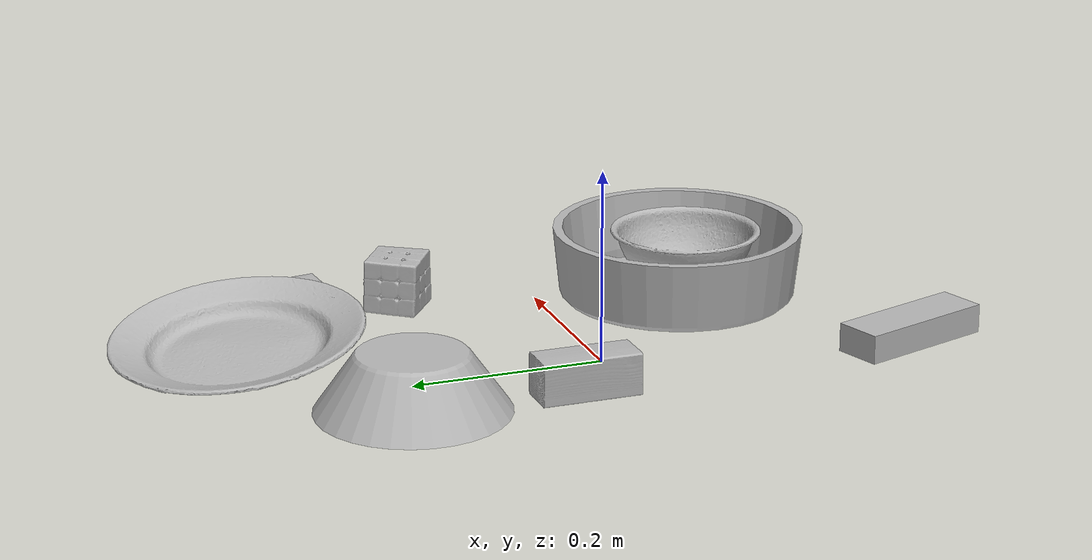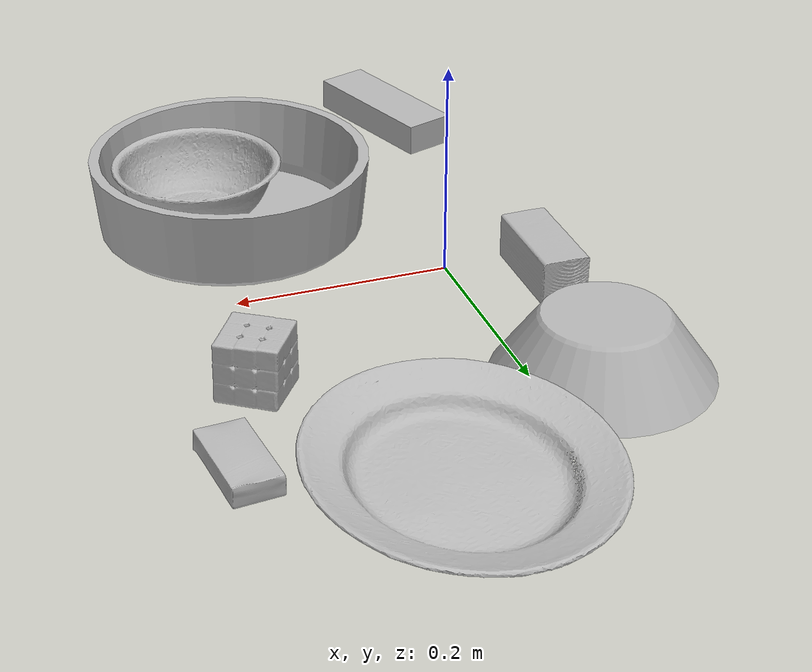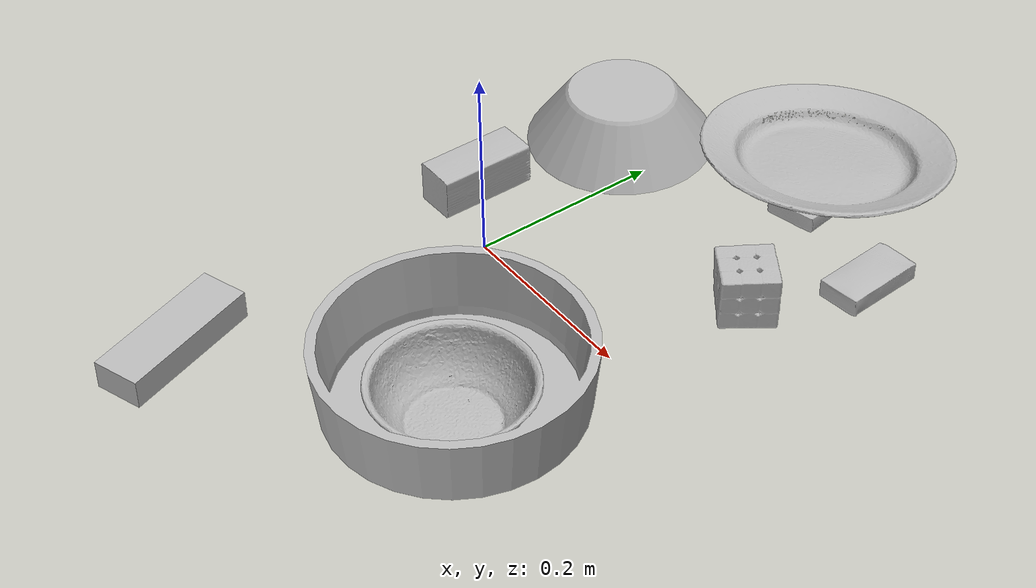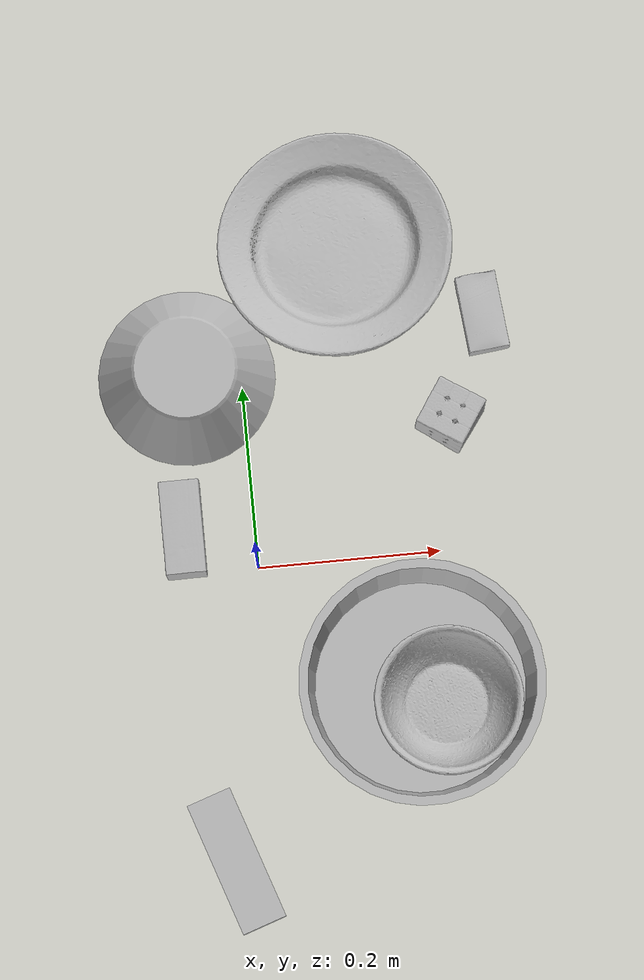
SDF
<sdf version="1.4">
  <world name="default">
    <light name="light1" type="point">
      <pose>0 0 1 0 0 0</pose>
      <diffuse>3 3 3 1</diffuse>
      <specular>3 3 3 1</specular>
    </light>
    <light name="light2" type="point">
      <pose>0 0.5 2 0 0 0</pose>
      <diffuse>1 1 1 1</diffuse>
      <specular>1 1 1 1</specular>
    </light>
    <light name="light3" type="point">
      <pose>0 0.5 2 0 0 0</pose>
      <diffuse>3 3 3 1</diffuse>
      <specular>3 3 3 1</specular>
    </light>
    <scene>
      <ambient>0.7 0.7 0.7</ambient>
    </scene>
    <model name="box1">
      <link name="link_box1">
        <collision name="default">
          <geometry>
            <mesh>
              <uri>model://gelatin_box/collision_meshes/collision.obj</uri>
              <scale>1.0 1.0 1.0</scale>
            </mesh>
          </geometry>
          <surface>
            <friction>
              <ode>
                <mu>0.5</mu>
                <mu2>0.5</mu2>
              </ode>
            </friction>
          <contact>
        <ode>
            <max_vel>0</max_vel>
            <min_depth>0.0001</min_depth>
            <kp>1e8</kp>
        </ode>
    </contact></surface>
        </collision>
        <visual name="default">
          <geometry>
            <mesh>
              <uri>model://gelatin_box/visual_meshes/visual.dae</uri>
              <scale>1.0 1.0 1.0</scale>
            </mesh>
          </geometry>
        </visual>
        <inertial>
          <mass>0.1979130208492279</mass>
          <pose>0.0004319618456065655 0.00011156871914863586 -0.0003640321083366871 -0.0010503722055948273 -0.004755818222760974 0.016440559471883928</pose>
          <inertia>
            <ixx>0.00013971045</ixx>
            <iyy>9.9794444e-05</iyy>
            <izz>0.00021267045</izz>
            <ixy>0</ixy>
            <ixz>0</ixz>
            <iyz>0</iyz>
          </inertia>
        </inertial>
      </link>
      <pose>-0.0625288188457489 0.2304728776216507 0.015168316662311554 0.005597475024507564 -0.007304538066545614 3.1274867538714655</pose>
    </model>
    <model name="box11">
      <link name="link_box11">
        <collision name="default">
          <geometry>
            <mesh>
              <uri>model://sugar_box/collision_meshes/collision.obj</uri>
              <scale>0.5 0.5 0.5</scale>
            </mesh>
          </geometry>
          <surface>
            <friction>
              <ode>
                <mu>0.5</mu>
                <mu2>0.5</mu2>
              </ode>
            </friction>
          <contact>
        <ode>
            <max_vel>0</max_vel>
            <min_depth>0.0001</min_depth>
            <kp>1e8</kp>
        </ode>
    </contact></surface>
        </collision>
        <visual name="default">
          <geometry>
            <mesh>
              <uri>model://sugar_box/visual_meshes/visual.dae</uri>
              <scale>0.5 0.5 0.5</scale>
            </mesh>
          </geometry>
        </visual>
        <inertial>
          <mass>0.10992158949375153</mass>
          <pose>0.0005171863595023751 1.924554817378521e-05 -0.00018182402709499002 -0.00040462650409139634 0.0010506636387973133 0.002615378555960767</pose>
          <inertia>
            <ixx>2.2896586e-05</ixx>
            <iyy>7.400649e-05</iyy>
            <izz>8.8594585e-05</izz>
            <ixy>0</ixy>
            <ixz>0</ixz>
            <iyz>0</iyz>
          </inertia>
        </inertial>
      </link>
      <pose>0.271648108959198 0.2586471438407898 0.011399305425584316 0.0007751894860044041 -0.02343242208171217 -1.4813430379908568</pose>
    </model>
    <model name="box2">
      <link name="link_box2">
        <collision name="default">
          <geometry>
            <mesh>
              <uri>model://jenga/collision_meshes/collision.obj</uri>
              <scale>1.0 1.0 1.0</scale>
            </mesh>
          </geometry>
          <surface>
            <friction>
              <ode>
                <mu>0.5</mu>
                <mu2>0.5</mu2>
              </ode>
            </friction>
          <contact>
        <ode>
            <max_vel>0</max_vel>
            <min_depth>0.0001</min_depth>
            <kp>1e8</kp>
        </ode>
    </contact></surface>
        </collision>
        <visual name="default">
          <geometry>
            <mesh>
              <uri>model://jenga/visual_meshes/visual.dae</uri>
              <scale>1.0 1.0 1.0</scale>
            </mesh>
          </geometry>
        </visual>
        <inertial>
          <mass>0.12651896476745605</mass>
          <pose>-2.502855807051674e-07 -0.00010250010382151231 -4.0923401684267446e-05 0.0 -7.34215461761844e-07 0.0</pose>
          <inertia>
            <ixx>3.5010868e-05</ixx>
            <iyy>0.00023723267</iyy>
            <izz>0.00025326604</izz>
            <ixy>0</ixy>
            <ixz>0</ixz>
            <iyz>0</iyz>
          </inertia>
        </inertial>
      </link>
      <pose>-0.05252620577812195 -0.31748464703559875 0.014999994076788425 8.631348796190653e-09 -4.737866367689888e-10 -1.2443914960711362</pose>
    </model>
    <model name="box21">
      <link name="link_box21">
        <collision name="default">
          <geometry>
            <mesh>
              <uri>model://wood_block/collision_meshes/collision.obj</uri>
              <scale>0.5 0.5 0.5</scale>
            </mesh>
          </geometry>
          <surface>
            <friction>
              <ode>
                <mu>0.5</mu>
                <mu2>0.5</mu2>
              </ode>
            </friction>
          <contact>
        <ode>
            <max_vel>0</max_vel>
            <min_depth>0.0001</min_depth>
            <kp>1e8</kp>
        </ode>
    </contact></surface>
        </collision>
        <visual name="default">
          <geometry>
            <mesh>
              <uri>model://wood_block/visual_meshes/visual.dae</uri>
              <scale>0.5 0.5 0.5</scale>
            </mesh>
          </geometry>
        </visual>
        <inertial>
          <mass>0.17952100932598114</mass>
          <pose>-2.906657982748584e-06 -0.00028540476341731846 0.00013204291462898254 -0.052208472466385096 -0.005192695659959234 -0.0068613786899108485</pose>
          <inertia>
            <ixx>6.0056565e-05</ixx>
            <iyy>0.0001897187</iyy>
            <izz>0.00018900905</izz>
            <ixy>0</ixy>
            <ixz>0</ixz>
            <iyz>0</iyz>
          </inertia>
        </inertial>
      </link>
      <pose>-0.07841434329748154 0.04686640575528145 0.02262926660478115 -0.005208442227192816 0.005718741403304881 1.5743951636369622</pose>
    </model>
    <model name="box3">
      <link name="link_box3">
        <collision name="default">
          <geometry>
            <mesh>
              <uri>model://rubiks_cube/collision_meshes/collision.obj</uri>
              <scale>1.0 1.0 1.0</scale>
            </mesh>
          </geometry>
          <surface>
            <friction>
              <ode>
                <mu>0.5</mu>
                <mu2>0.5</mu2>
              </ode>
            </friction>
          <contact>
        <ode>
            <max_vel>0</max_vel>
            <min_depth>0.0001</min_depth>
            <kp>1e8</kp>
        </ode>
    </contact></surface>
        </collision>
        <visual name="default">
          <geometry>
            <mesh>
              <uri>model://rubiks_cube/visual_meshes/visual.dae</uri>
              <scale>1.0 1.0 1.0</scale>
            </mesh>
          </geometry>
        </visual>
        <inertial>
          <mass>0.2539031207561493</mass>
          <pose>2.6721041649580002e-05 5.2569666877388954e-05 -7.264316082000732e-06 -0.05467208428881645 -0.09814040742269707 -0.034455380154792534</pose>
          <inertia>
            <ixx>0.00014029852</ixx>
            <iyy>0.00013964424</iyy>
            <izz>0.00014146113</izz>
            <ixy>0</ixy>
            <ixz>0</ixz>
            <iyz>0</iyz>
          </inertia>
        </inertial>
      </link>
      <pose>0.22429245710372925 0.14472272992134094 0.028679005801677704 -2.8252744105094057e-08 2.874088960237989e-08 -0.5927831402815482</pose>
    </model>
    <model name="box31">
      <link name="link_box31">
        <collision name="default">
          <geometry>
            <mesh>
              <uri>model://pudding_box/collision_meshes/collision.obj</uri>
              <scale>0.5 0.5 0.5</scale>
            </mesh>
          </geometry>
          <surface>
            <friction>
              <ode>
                <mu>0.5</mu>
                <mu2>0.5</mu2>
              </ode>
            </friction>
          <contact>
        <ode>
            <max_vel>0</max_vel>
            <min_depth>0.0001</min_depth>
            <kp>1e8</kp>
        </ode>
    </contact></surface>
        </collision>
        <visual name="default">
          <geometry>
            <mesh>
              <uri>model://pudding_box/visual_meshes/visual.dae</uri>
              <scale>0.5 0.5 0.5</scale>
            </mesh>
          </geometry>
        </visual>
        <inertial>
          <mass>0.030597222968935966</mass>
          <pose>0.00024474109522998333 0.00040339428232982755 -0.00025944135268218815 0.005213101792545572 -0.006603798718575614 0.020079825159656634</pose>
          <inertia>
            <ixx>8.6471455e-06</ixx>
            <iyy>5.8178607e-06</iyy>
            <izz>1.2769769e-05</izz>
            <ixy>0</ixy>
            <ixz>0</ixz>
            <iyz>0</iyz>
          </inertia>
        </inertial>
      </link>
      <pose>0.14977586269378662 0.28442996740341187 0.010022540576756 0.016979196657862437 -0.025841991851872536 -1.3869179757746777</pose>
    </model>
    <model name="plate1">
      <link name="link_plate1">
        <collision name="default">
          <geometry>
            <mesh>
              <uri>model://pan_tefal/collision_meshes/collision.obj</uri>
              <scale>1.0 1.0 1.0</scale>
            </mesh>
          </geometry>
          <surface>
            <friction>
              <ode>
                <mu>0.5</mu>
                <mu2>0.5</mu2>
              </ode>
            </friction>
          <contact>
        <ode>
            <max_vel>0</max_vel>
            <min_depth>0.0001</min_depth>
            <kp>1e8</kp>
        </ode>
    </contact></surface>
        </collision>
        <visual name="default">
          <geometry>
            <mesh>
              <uri>model://pan_tefal/visual_meshes/visual.dae</uri>
              <scale>1.0 1.0 1.0</scale>
            </mesh>
          </geometry>
        </visual>
        <inertial>
          <mass>1.6321053504943848</mass>
          <pose>-0.00018001697026193142 3.279276279499754e-05 -0.00851493887603283 0.0008190355512640809 -0.00033013448733331557 -0.33186498661790637</pose>
          <inertia>
            <ixx>0.011266344</ixx>
            <iyy>0.011338978</iyy>
            <izz>0.02073917</izz>
            <ixy>0</ixy>
            <ixz>0</ixz>
            <iyz>0</iyz>
          </inertia>
        </inertial>
      </link>
      <pose>0.16316616535186768 -0.14805272221565247 0.037984006106853485 -0.0003844265249852332 -0.00036481573260846147 3.137157210620994</pose>
    </model>
    <model name="bowl1">
      <link name="link_bowl1">
        <collision name="default">
          <geometry>
            <mesh>
              <uri>model://bowl/collision_meshes/collision.obj</uri>
              <scale>1.0 1.0 1.0</scale>
            </mesh>
          </geometry>
          <surface>
            <friction>
              <ode>
                <mu>0.5</mu>
                <mu2>0.5</mu2>
              </ode>
            </friction>
          <contact>
        <ode>
            <max_vel>0</max_vel>
            <min_depth>0.0001</min_depth>
            <kp>1e8</kp>
        </ode>
    </contact></surface>
        </collision>
        <visual name="default">
          <geometry>
            <mesh>
              <uri>model://bowl/visual_meshes/visual.dae</uri>
              <scale>1.0 1.0 1.0</scale>
            </mesh>
          </geometry>
        </visual>
        <inertial>
          <mass>0.08853479474782944</mass>
          <pose>0.0002044534485321492 -0.0010302085429430008 -0.0008042657864280045 -0.015764086220495594 0.014546762208611713 0.7140398935341641</pose>
          <inertia>
            <ixx>0.00020337135</ixx>
            <iyy>0.00019882726</iyy>
            <izz>0.00034214073</izz>
            <ixy>0</ixy>
            <ixz>0</ixz>
            <iyz>0</iyz>
          </inertia>
        </inertial>
      </link>
      <pose>0.19037480652332306 -0.16880586743354797 0.035397984087467194 -0.0024900425835970353 0.0025318348008188324 -1.6638552040836543</pose>
    </model>
    <model name="plate2">
      <link name="link_plate2">
        <collision name="default">
          <geometry>
            <mesh>
              <uri>model://plate/collision_meshes/collision.obj</uri>
              <scale>1.0 1.0 1.0</scale>
            </mesh>
          </geometry>
          <surface>
            <friction>
              <ode>
                <mu>0.5</mu>
                <mu2>0.5</mu2>
              </ode>
            </friction>
          <contact>
        <ode>
            <max_vel>0</max_vel>
            <min_depth>0.0001</min_depth>
            <kp>1e8</kp>
        </ode>
    </contact></surface>
        </collision>
        <visual name="default">
          <geometry>
            <mesh>
              <uri>model://plate/visual_meshes/visual.dae</uri>
              <scale>1.0 1.0 1.0</scale>
            </mesh>
          </geometry>
        </visual>
        <inertial>
          <mass>0.10531359910964966</mass>
          <pose>-0.0006044624024070799 0.00027825951110571623 -0.001056199660524726 0.0022187923451504944 -0.0032254757952566134 0.45260828030698763</pose>
          <inertia>
            <ixx>0.00049265905</ixx>
            <iyy>0.00048794702</iyy>
            <izz>0.0009635677</izz>
            <ixy>0</ixy>
            <ixz>0</ixz>
            <iyz>0</iyz>
          </inertia>
        </inertial>
      </link>
      <pose>0.11646205931901932 0.3452775180339813 0.024286378175020218 -0.12489105531351591 0.05168128043740117 0.8760734631849524</pose>
    </model>
    <model name="bowl2">
      <link name="link_bowl2">
        <collision name="default">
          <geometry>
            <mesh>
              <uri>model://bowl_a/collision_meshes/collision.obj</uri>
              <scale>1.0 1.0 1.0</scale>
            </mesh>
          </geometry>
          <surface>
            <friction>
              <ode>
                <mu>0.5</mu>
                <mu2>0.5</mu2>
              </ode>
            </friction>
          <contact>
        <ode>
            <max_vel>0</max_vel>
            <min_depth>0.0001</min_depth>
            <kp>1e8</kp>
        </ode>
    </contact></surface>
        </collision>
        <visual name="default">
          <geometry>
            <mesh>
              <uri>model://bowl_a/visual_meshes/visual.dae</uri>
              <scale>1.0 1.0 1.0</scale>
            </mesh>
          </geometry>
        </visual>
        <inertial>
          <mass>0.4180941581726074</mass>
          <pose>0.000278673687716946 4.731199442176148e-05 -0.0013765294570475817 -0.0009805326545729344 -0.001093820496942545 -0.19124076645491772</pose>
          <inertia>
            <ixx>0.0011903334</ixx>
            <iyy>0.0011976411</iyy>
            <izz>0.0021170534</izz>
            <ixy>0</ixy>
            <ixz>0</ixz>
            <iyz>0</iyz>
          </inertia>
        </inertial>
      </link>
      <pose>-0.05980262532830238 0.218048557639122 0.030099913477897644 3.1415602599768047 3.891239119725245e-05 1.984721541535682</pose>
    </model>
  <physics type="ode">
      <max_contacts>50</max_contacts>
      <ode>
        <solver>
          <type>quick</type>
          <iters>75</iters>
        </solver>
        <constraints>
          <contact_max_correcting_vel>0</contact_max_correcting_vel>
          <contact_surface_layer>0</contact_surface_layer>
        </constraints>
      </ode>
    </physics></world>
</sdf>
